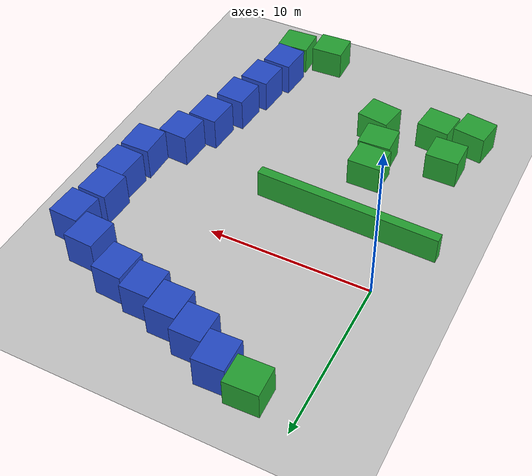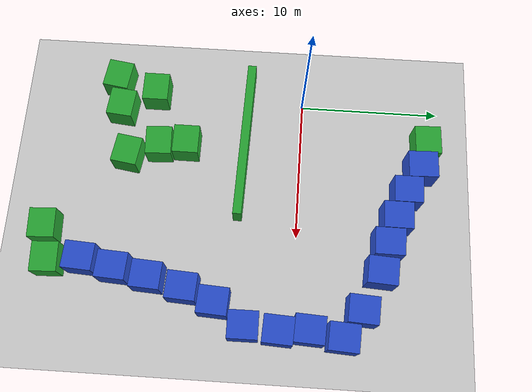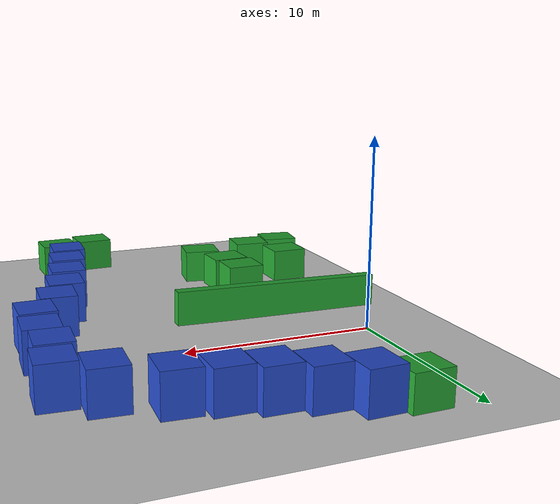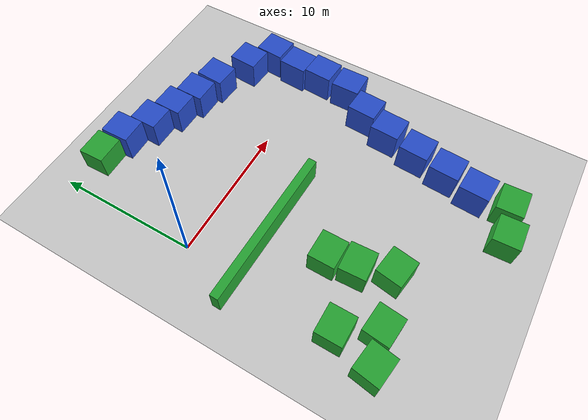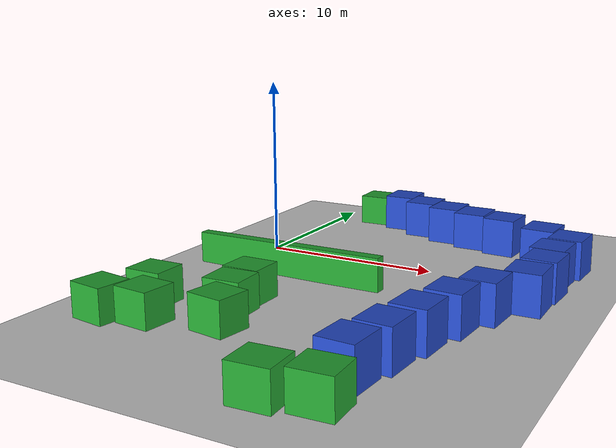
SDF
<sdf version="1.7">
 <world name="default">
  <light name="sun" type="directional">
   <pose>0 0 10 0 -0 0</pose>
   <diffuse>0.8 0.8 0.8 1</diffuse>
   <specular>0.2 0.2 0.2 1</specular>
   <attenuation>
    <range>1000</range>
    <constant>0.9</constant>
    <linear>0.01</linear>
    <quadratic>0.001</quadratic>
   </attenuation>
   <direction>-0.5 0.1 -0.9</direction>
   <spot><inner_angle>0</inner_angle><outer_angle>0</outer_angle><falloff>0</falloff></spot>
  </light>
  <model name="ground_plane">
   <static>1</static>
   <link name="link">
    <collision name="collision">
     <geometry><plane><normal>0 0 1</normal><size>100 100</size></plane></geometry>
     <surface><friction><ode><mu>100</mu><mu2>50</mu2></ode></friction></surface>
    </collision>
    <visual name="visual">
     <cast_shadows>0</cast_shadows>
     <geometry><plane><normal>0 0 1</normal><size>100 100</size></plane></geometry>
     <material>
      <script><uri>file://media/materials/scripts/gazebo.material</uri><name>Gazebo/Grey</name></script>
     </material>
    </visual>
   </link>
  </model>
  <gravity>0 0 -9.8</gravity>
  <magnetic_field>6e-06 2.3e-05 -4.2e-05</magnetic_field>
  <atmosphere type="adiabatic"/>
  <physics type="ode">
   <max_step_size>0.001</max_step_size>
   <real_time_factor>1</real_time_factor>
   <real_time_update_rate>1000</real_time_update_rate>
  </physics>
  <scene><ambient>0.4 0.4 0.4 1</ambient><background>0.7 0.7 0.7 1</background><shadows>1</shadows></scene>
  <audio><device>default</device></audio>
  <spherical_coordinates>
   <surface_model>EARTH_WGS84</surface_model>
   <latitude_deg>0</latitude_deg>
   <longitude_deg>0</longitude_deg>
   <elevation>0</elevation>
   <heading_deg>0</heading_deg>
  </spherical_coordinates>
  <model name="unit_box_clone_1">
   <pose>6.55846 7.52682 1.06964 5e-06 -0 -0.003659</pose>
   <link name="link">
    <inertial>
     <mass>1</mass>
     <inertia>
      <ixx>0.166667</ixx>
      <ixy>0</ixy>
      <ixz>0</ixz>
      <iyy>0.166667</iyy>
      <iyz>0</iyz>
      <izz>0.166667</izz>
     </inertia>
    </inertial>
    <collision name="collision"><geometry><box><size>1.86035 1.97117 2.13929</size></box></geometry></collision>
    <visual name="visual">
     <geometry><box><size>1.86035 1.97117 2.13929</size></box></geometry>
     <material>
      <script><name>Gazebo/Blue</name><uri>file://media/materials/scripts/gazebo.material</uri></script>
     </material>
    </visual>
   </link>
  </model>
  <model name="unit_box_clone_clone">
   <pose>2.7059 8.96361 0.91402 1.5708 -0 0.031252</pose>
   <link name="link">
    <inertial>
     <mass>1</mass>
     <inertia>
      <ixx>0.166667</ixx>
      <ixy>0</ixy>
      <ixz>0</ixz>
      <iyy>0.166667</iyy>
      <iyz>0</iyz>
      <izz>0.166667</izz>
     </inertia>
    </inertial>
    <collision name="collision"><geometry><box><size>2.03443 1.82805 1.82357</size></box></geometry></collision>
    <visual name="visual">
     <geometry><box><size>2.03443 1.82805 1.82357</size></box></geometry>
     <material>
      <script><name>Gazebo/Green</name><uri>file://media/materials/scripts/gazebo.material</uri></script>
     </material>
    </visual>
   </link>
  </model>
  <model name="unit_box_clone_0_clone">
   <pose>4.66837 8.53687 1.06964 0 -0 0.029509</pose>
   <link name="link">
    <inertial>
     <mass>1</mass>
     <inertia>
      <ixx>0.166667</ixx>
      <ixy>0</ixy>
      <ixz>0</ixz>
      <iyy>0.166667</iyy>
      <iyz>0</iyz>
      <izz>0.166667</izz>
     </inertia>
    </inertial>
    <collision name="collision"><geometry><box><size>1.86035 2.04617 2.13929</size></box></geometry></collision>
    <visual name="visual">
     <geometry><box><size>1.86035 2.04617 2.13929</size></box></geometry>
     <material>
      <script><name>Gazebo/Blue</name><uri>file://media/materials/scripts/gazebo.material</uri></script>
     </material>
    </visual>
   </link>
  </model>
  <model name="unit_box_clone_0_clone_0">
   <pose>8.43709 6.84016 1.06964 -4e-06 -0 -0.007749</pose>
   <link name="link">
    <inertial>
     <mass>1</mass>
     <inertia>
      <ixx>0.166667</ixx>
      <ixy>0</ixy>
      <ixz>0</ixz>
      <iyy>0.166667</iyy>
      <iyz>0</iyz>
      <izz>0.166667</izz>
     </inertia>
    </inertial>
    <collision name="collision"><geometry><box><size>1.86035 2.04617 2.13929</size></box></geometry></collision>
    <visual name="visual">
     <geometry><box><size>1.86035 2.04617 2.13929</size></box></geometry>
     <material>
      <script><name>Gazebo/Blue</name><uri>file://media/materials/scripts/gazebo.material</uri></script>
     </material>
    </visual>
   </link>
  </model>
  <model name="unit_box_clone_0_clone_1">
   <pose>10.3185 6.25756 1.06964 0 -1e-06 -0.009427</pose>
   <link name="link">
    <inertial>
     <mass>1</mass>
     <inertia>
      <ixx>0.166667</ixx>
      <ixy>0</ixy>
      <ixz>0</ixz>
      <iyy>0.166667</iyy>
      <iyz>0</iyz>
      <izz>0.166667</izz>
     </inertia>
    </inertial>
    <collision name="collision"><geometry><box><size>1.86035 2.04617 2.13929</size></box></geometry></collision>
    <visual name="visual">
     <geometry><box><size>1.86035 2.04617 2.13929</size></box></geometry>
     <material>
      <script><name>Gazebo/Blue</name><uri>file://media/materials/scripts/gazebo.material</uri></script>
     </material>
    </visual>
   </link>
  </model>
  <model name="unit_box_clone_0_clone_2">
   <pose>12.3311 5.80449 1.06964 0 1e-06 -0.060828</pose>
   <link name="link">
    <inertial>
     <mass>1</mass>
     <inertia>
      <ixx>0.166667</ixx>
      <ixy>0</ixy>
      <ixz>0</ixz>
      <iyy>0.166667</iyy>
      <iyz>0</iyz>
      <izz>0.166667</izz>
     </inertia>
    </inertial>
    <collision name="collision"><geometry><box><size>1.86035 2.04617 2.13929</size></box></geometry></collision>
    <visual name="visual">
     <geometry><box><size>1.86035 2.04617 2.13929</size></box></geometry>
     <material>
      <script><name>Gazebo/Blue</name><uri>file://media/materials/scripts/gazebo.material</uri></script>
     </material>
    </visual>
   </link>
  </model>
  <model name="unit_box_clone_0_clone_3">
   <pose>14.9771 4.57279 1.06964 0 -4e-06 -0.060829</pose>
   <link name="link">
    <inertial>
     <mass>1</mass>
     <inertia>
      <ixx>0.166667</ixx>
      <ixy>0</ixy>
      <ixz>0</ixz>
      <iyy>0.166667</iyy>
      <iyz>0</iyz>
      <izz>0.166667</izz>
     </inertia>
    </inertial>
    <collision name="collision"><geometry><box><size>1.86035 2.04617 2.13929</size></box></geometry></collision>
    <visual name="visual">
     <geometry><box><size>1.86035 2.04617 2.13929</size></box></geometry>
     <material>
      <script><name>Gazebo/Blue</name><uri>file://media/materials/scripts/gazebo.material</uri></script>
     </material>
    </visual>
   </link>
  </model>
  <model name="unit_box_clone_0_clone_4">
   <pose>16.8411 3.33203 1.06964 0 -4e-06 -0.060829</pose>
   <link name="link">
    <inertial>
     <mass>1</mass>
     <inertia>
      <ixx>0.166667</ixx>
      <ixy>0</ixy>
      <ixz>0</ixz>
      <iyy>0.166667</iyy>
      <iyz>0</iyz>
      <izz>0.166667</izz>
     </inertia>
    </inertial>
    <collision name="collision"><geometry><box><size>1.86035 2.04617 2.13929</size></box></geometry></collision>
    <visual name="visual">
     <geometry><box><size>1.86035 2.04617 2.13929</size></box></geometry>
     <material>
      <script><name>Gazebo/Blue</name><uri>file://media/materials/scripts/gazebo.material</uri></script>
     </material>
    </visual>
   </link>
  </model>
  <model name="unit_box_clone_0_clone_5">
   <pose>16.4691 1.10703 1.06964 -0 -0 -0.055568</pose>
   <link name="link">
    <inertial>
     <mass>1</mass>
     <inertia>
      <ixx>0.166667</ixx>
      <ixy>0</ixy>
      <ixz>0</ixz>
      <iyy>0.166667</iyy>
      <iyz>0</iyz>
      <izz>0.166667</izz>
     </inertia>
    </inertial>
    <collision name="collision"><geometry><box><size>1.86035 2.04617 2.13929</size></box></geometry></collision>
    <visual name="visual">
     <geometry><box><size>1.86035 2.04617 2.13929</size></box></geometry>
     <material>
      <script><name>Gazebo/Blue</name><uri>file://media/materials/scripts/gazebo.material</uri></script>
     </material>
    </visual>
   </link>
  </model>
  <model name="unit_box_clone_0_clone_6">
   <pose>16.6274 -0.951109 1.06964 -0 -0 -0.055564</pose>
   <link name="link">
    <inertial>
     <mass>1</mass>
     <inertia>
      <ixx>0.166667</ixx>
      <ixy>0</ixy>
      <ixz>0</ixz>
      <iyy>0.166667</iyy>
      <iyz>0</iyz>
      <izz>0.166667</izz>
     </inertia>
    </inertial>
    <collision name="collision"><geometry><box><size>1.86035 2.04617 2.13929</size></box></geometry></collision>
    <visual name="visual">
     <geometry><box><size>1.86035 2.04617 2.13929</size></box></geometry>
     <material>
      <script><name>Gazebo/Blue</name><uri>file://media/materials/scripts/gazebo.material</uri></script>
     </material>
    </visual>
   </link>
  </model>
  <model name="unit_box_clone_0_clone_7">
   <pose>16.4594 -3.25925 1.06964 -4e-06 0 0.004658</pose>
   <link name="link">
    <inertial>
     <mass>1</mass>
     <inertia>
      <ixx>0.166667</ixx>
      <ixy>0</ixy>
      <ixz>0</ixz>
      <iyy>0.166667</iyy>
      <iyz>0</iyz>
      <izz>0.166667</izz>
     </inertia>
    </inertial>
    <collision name="collision"><geometry><box><size>1.86035 2.04617 2.13929</size></box></geometry></collision>
    <visual name="visual">
     <geometry><box><size>1.86035 2.04617 2.13929</size></box></geometry>
     <material>
      <script><name>Gazebo/Blue</name><uri>file://media/materials/scripts/gazebo.material</uri></script>
     </material>
    </visual>
   </link>
  </model>
  <model name="unit_box_clone_0_clone_8">
   <pose>15.0168 -5.33031 1.06964 0 -1e-06 -0.060831</pose>
   <link name="link">
    <inertial>
     <mass>1</mass>
     <inertia>
      <ixx>0.166667</ixx>
      <ixy>0</ixy>
      <ixz>0</ixz>
      <iyy>0.166667</iyy>
      <iyz>0</iyz>
      <izz>0.166667</izz>
     </inertia>
    </inertial>
    <collision name="collision"><geometry><box><size>1.86035 2.04617 2.13929</size></box></geometry></collision>
    <visual name="visual">
     <geometry><box><size>1.86035 2.04617 2.13929</size></box></geometry>
     <material>
      <script><name>Gazebo/Blue</name><uri>file://media/materials/scripts/gazebo.material</uri></script>
     </material>
    </visual>
   </link>
  </model>
  <model name="unit_box_clone_0_clone_9">
   <pose>14.183 -7.48233 1.06964 0 4e-06 -0.060831</pose>
   <link name="link">
    <inertial>
     <mass>1</mass>
     <inertia>
      <ixx>0.166667</ixx>
      <ixy>0</ixy>
      <ixz>0</ixz>
      <iyy>0.166667</iyy>
      <iyz>0</iyz>
      <izz>0.166667</izz>
     </inertia>
    </inertial>
    <collision name="collision"><geometry><box><size>1.86035 2.04617 2.13929</size></box></geometry></collision>
    <visual name="visual">
     <geometry><box><size>1.86035 2.04617 2.13929</size></box></geometry>
     <material>
      <script><name>Gazebo/Blue</name><uri>file://media/materials/scripts/gazebo.material</uri></script>
     </material>
    </visual>
   </link>
  </model>
  <model name="unit_box_clone_0_clone_10">
   <pose>13.5827 -9.89472 1.06964 0 1e-06 -0.060831</pose>
   <link name="link">
    <inertial>
     <mass>1</mass>
     <inertia>
      <ixx>0.166667</ixx>
      <ixy>0</ixy>
      <ixz>0</ixz>
      <iyy>0.166667</iyy>
      <iyz>0</iyz>
      <izz>0.166667</izz>
     </inertia>
    </inertial>
    <collision name="collision"><geometry><box><size>1.86035 2.04617 2.13929</size></box></geometry></collision>
    <visual name="visual">
     <geometry><box><size>1.86035 2.04617 2.13929</size></box></geometry>
     <material>
      <script><name>Gazebo/Blue</name><uri>file://media/materials/scripts/gazebo.material</uri></script>
     </material>
    </visual>
   </link>
  </model>
  <model name="unit_box_clone_0_clone_11">
   <pose>13.0981 -12.2482 1.06964 0 -4e-06 -0.060832</pose>
   <link name="link">
    <inertial>
     <mass>1</mass>
     <inertia>
      <ixx>0.166667</ixx>
      <ixy>0</ixy>
      <ixz>0</ixz>
      <iyy>0.166667</iyy>
      <iyz>0</iyz>
      <izz>0.166667</izz>
     </inertia>
    </inertial>
    <collision name="collision"><geometry><box><size>1.86035 2.04617 2.13929</size></box></geometry></collision>
    <visual name="visual">
     <geometry><box><size>1.86035 2.04617 2.13929</size></box></geometry>
     <material>
      <script><name>Gazebo/Blue</name><uri>file://media/materials/scripts/gazebo.material</uri></script>
     </material>
    </visual>
   </link>
  </model>
  <model name="unit_box_clone_0_clone_12">
   <pose>12.6136 -14.5153 1.06964 0 -1e-06 -0.060832</pose>
   <link name="link">
    <inertial>
     <mass>1</mass>
     <inertia>
      <ixx>0.166667</ixx>
      <ixy>0</ixy>
      <ixz>0</ixz>
      <iyy>0.166667</iyy>
      <iyz>0</iyz>
      <izz>0.166667</izz>
     </inertia>
    </inertial>
    <collision name="collision"><geometry><box><size>1.86035 2.04617 2.13929</size></box></geometry></collision>
    <visual name="visual">
     <geometry><box><size>1.86035 2.04617 2.13929</size></box></geometry>
     <material>
      <script><name>Gazebo/Blue</name><uri>file://media/materials/scripts/gazebo.material</uri></script>
     </material>
    </visual>
   </link>
  </model>
  <model name="unit_box_clone_clone_10_clone">
   <pose>-1.06839 -13.5751 0.914025 1.5708 0 -0.147005</pose>
   <link name="link">
    <inertial>
     <mass>1</mass>
     <inertia>
      <ixx>0.166667</ixx>
      <ixy>0</ixy>
      <ixz>0</ixz>
      <iyy>0.166667</iyy>
      <iyz>0</iyz>
      <izz>0.166667</izz>
     </inertia>
    </inertial>
    <collision name="collision"><geometry><box><size>2.03443 1.82805 1.82357</size></box></geometry></collision>
    <visual name="visual">
     <geometry><box><size>2.03443 1.82805 1.82357</size></box></geometry>
     <material>
      <script><name>Gazebo/Green</name><uri>file://media/materials/scripts/gazebo.material</uri></script>
     </material>
    </visual>
   </link>
  </model>
  <model name="unit_box_clone_clone_10_clone_0">
   <pose>4.76551 -12.2767 0.914025 1.5708 -0 -0.154408</pose>
   <link name="link">
    <inertial>
     <mass>1</mass>
     <inertia>
      <ixx>0.166667</ixx>
      <ixy>0</ixy>
      <ixz>0</ixz>
      <iyy>0.166667</iyy>
      <iyz>0</iyz>
      <izz>0.166667</izz>
     </inertia>
    </inertial>
    <collision name="collision"><geometry><box><size>2.03443 1.82805 1.82357</size></box></geometry></collision>
    <visual name="visual">
     <geometry><box><size>2.03443 1.82805 1.82357</size></box></geometry>
     <material>
      <script><name>Gazebo/Green</name><uri>file://media/materials/scripts/gazebo.material</uri></script>
     </material>
    </visual>
   </link>
  </model>
  <model name="unit_box_clone_clone_10_clone_2">
   <pose>3.31271 -4.01801 0.851706 1.57113 -0.011006 -0.030067</pose>
   <link name="link">
    <inertial>
     <mass>1</mass>
     <inertia>
      <ixx>0.166667</ixx>
      <ixy>0</ixy>
      <ixz>0</ixz>
      <iyy>0.166667</iyy>
      <iyz>0</iyz>
      <izz>0.166667</izz>
     </inertia>
    </inertial>
    <collision name="collision"><geometry><box><size>11.3889 1.82805 0.603742</size></box></geometry></collision>
    <visual name="visual">
     <geometry><box><size>11.3889 1.82805 0.603742</size></box></geometry>
     <material>
      <script><name>Gazebo/Green</name><uri>file://media/materials/scripts/gazebo.material</uri></script>
     </material>
    </visual>
   </link>
  </model>
  <model name="unit_box_clone_clone_10_clone_3">
   <pose>3.70972 -8.17862 0.914025 1.5708 0 -0.005406</pose>
   <link name="link">
    <inertial>
     <mass>1</mass>
     <inertia>
      <ixx>0.166667</ixx>
      <ixy>0</ixy>
      <ixz>0</ixz>
      <iyy>0.166667</iyy>
      <iyz>0</iyz>
      <izz>0.166667</izz>
     </inertia>
    </inertial>
    <collision name="collision"><geometry><box><size>2.03443 1.82805 1.82357</size></box></geometry></collision>
    <visual name="visual">
     <geometry><box><size>2.03443 1.82805 1.82357</size></box></geometry>
     <material>
      <script><name>Gazebo/Green</name><uri>file://media/materials/scripts/gazebo.material</uri></script>
     </material>
    </visual>
   </link>
  </model>
  <model name="unit_box_clone_clone_10_clone_4">
   <pose>3.91951 -10.1008 0.91402 1.5708 0 0.044363</pose>
   <link name="link">
    <inertial>
     <mass>1</mass>
     <inertia>
      <ixx>0.166667</ixx>
      <ixy>0</ixy>
      <ixz>0</ixz>
      <iyy>0.166667</iyy>
      <iyz>0</iyz>
      <izz>0.166667</izz>
     </inertia>
    </inertial>
    <collision name="collision"><geometry><box><size>2.03443 1.82805 1.82357</size></box></geometry></collision>
    <visual name="visual">
     <geometry><box><size>2.03443 1.82805 1.82357</size></box></geometry>
     <material>
      <script><name>Gazebo/Green</name><uri>file://media/materials/scripts/gazebo.material</uri></script>
     </material>
    </visual>
   </link>
  </model>
  <model name="unit_box_clone_clone_10_clone_5">
   <pose>1.14651 -13.0875 0.91402 1.5708 -0 -0.101884</pose>
   <link name="link">
    <inertial>
     <mass>1</mass>
     <inertia>
      <ixx>0.166667</ixx>
      <ixy>0</ixy>
      <ixz>0</ixz>
      <iyy>0.166667</iyy>
      <iyz>0</iyz>
      <izz>0.166667</izz>
     </inertia>
    </inertial>
    <collision name="collision"><geometry><box><size>2.03443 1.82805 1.82357</size></box></geometry></collision>
    <visual name="visual">
     <geometry><box><size>2.03443 1.82805 1.82357</size></box></geometry>
     <material>
      <script><name>Gazebo/Green</name><uri>file://media/materials/scripts/gazebo.material</uri></script>
     </material>
    </visual>
   </link>
  </model>
  <model name="unit_box_clone_clone_10_clone_6">
   <pose>-0.238819 -10.7265 0.91402 1.5708 -0 -0.001264</pose>
   <link name="link">
    <inertial>
     <mass>1</mass>
     <inertia>
      <ixx>0.166667</ixx>
      <ixy>0</ixy>
      <ixz>0</ixz>
      <iyy>0.166667</iyy>
      <iyz>0</iyz>
      <izz>0.166667</izz>
     </inertia>
    </inertial>
    <collision name="collision"><geometry><box><size>2.03443 1.82805 1.82357</size></box></geometry></collision>
    <visual name="visual">
     <geometry><box><size>2.03443 1.82805 1.82357</size></box></geometry>
     <material>
      <script><name>Gazebo/Green</name><uri>file://media/materials/scripts/gazebo.material</uri></script>
     </material>
    </visual>
   </link>
  </model>
  <model name="unit_box_clone_clone_10_clone_7">
   <pose>10.4473 -17.3972 0.914025 1.5708 0 0.044365</pose>
   <link name="link">
    <inertial>
     <mass>1</mass>
     <inertia>
      <ixx>0.166667</ixx>
      <ixy>0</ixy>
      <ixz>0</ixz>
      <iyy>0.166667</iyy>
      <iyz>0</iyz>
      <izz>0.166667</izz>
     </inertia>
    </inertial>
    <collision name="collision"><geometry><box><size>2.03443 1.82805 1.82357</size></box></geometry></collision>
    <visual name="visual">
     <geometry><box><size>2.03443 1.82805 1.82357</size></box></geometry>
     <material>
      <script><name>Gazebo/Green</name><uri>file://media/materials/scripts/gazebo.material</uri></script>
     </material>
    </visual>
   </link>
  </model>
  <model name="unit_box_clone_clone_10_clone_8">
   <pose>12.7679 -16.8659 0.914025 1.5708 -0 0.04436</pose>
   <link name="link">
    <inertial>
     <mass>1</mass>
     <inertia>
      <ixx>0.166667</ixx>
      <ixy>0</ixy>
      <ixz>0</ixz>
      <iyy>0.166667</iyy>
      <iyz>0</iyz>
      <izz>0.166667</izz>
     </inertia>
    </inertial>
    <collision name="collision"><geometry><box><size>2.03443 1.82805 1.82357</size></box></geometry></collision>
    <visual name="visual">
     <geometry><box><size>2.03443 1.82805 1.82357</size></box></geometry>
     <material>
      <script><name>Gazebo/Green</name><uri>file://media/materials/scripts/gazebo.material</uri></script>
     </material>
    </visual>
   </link>
  </model>
 </world>
</sdf>
